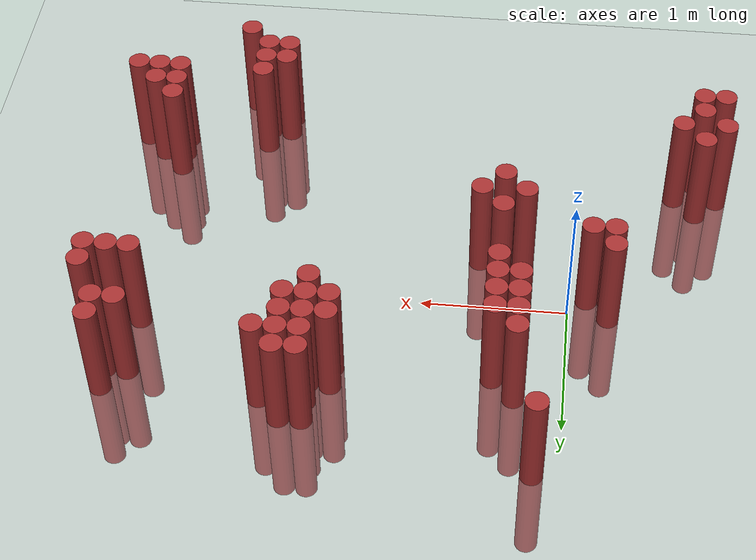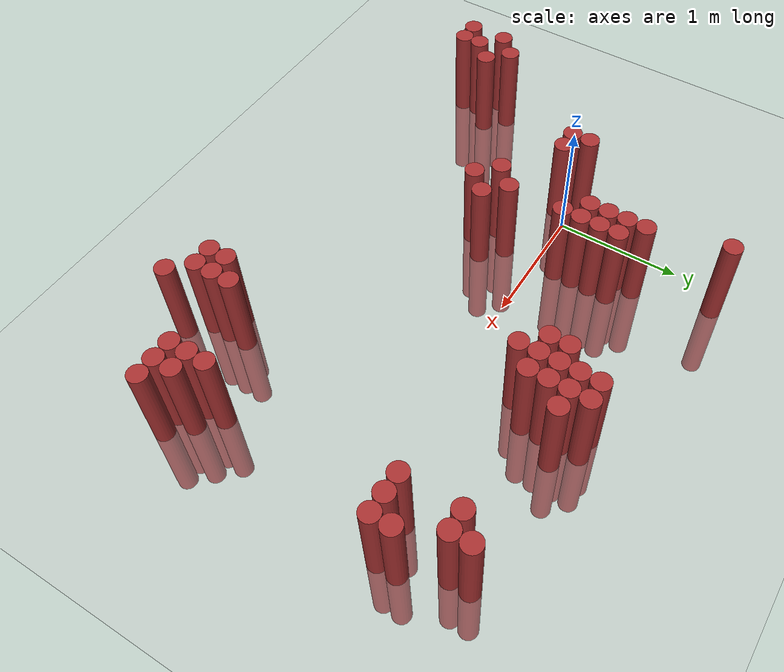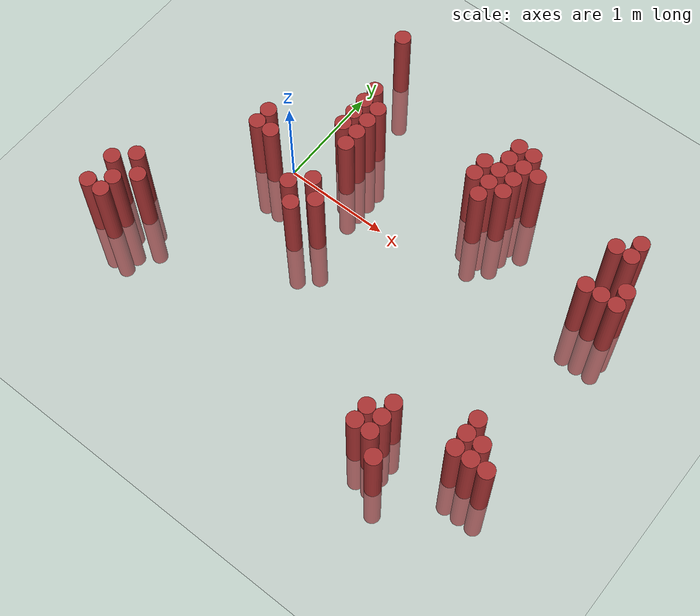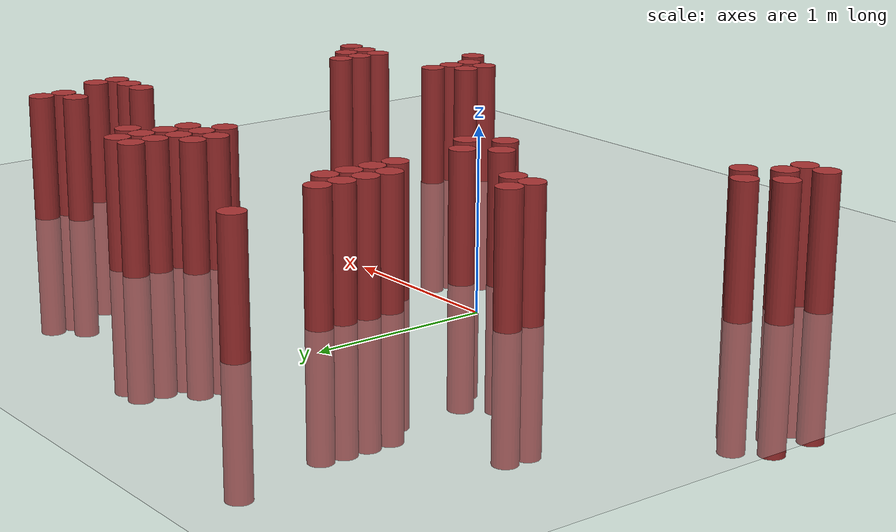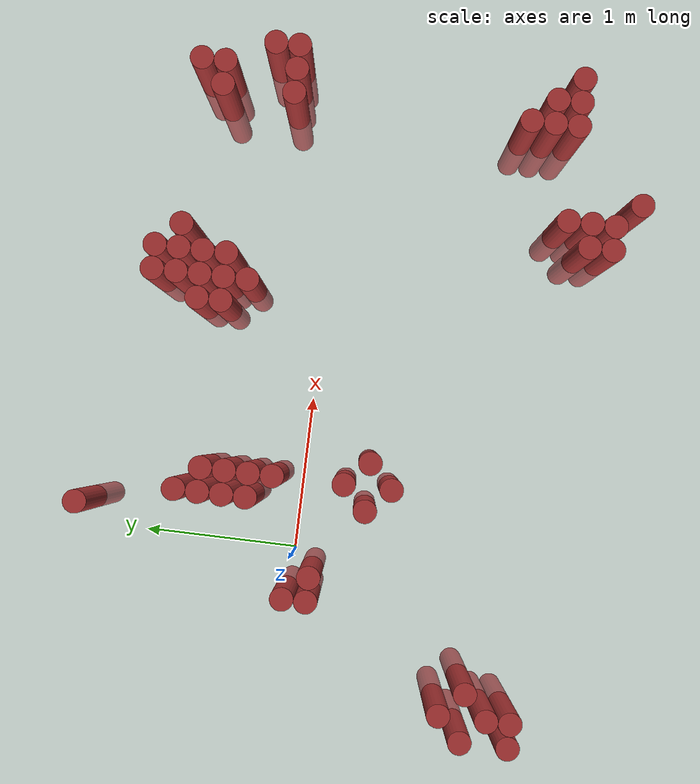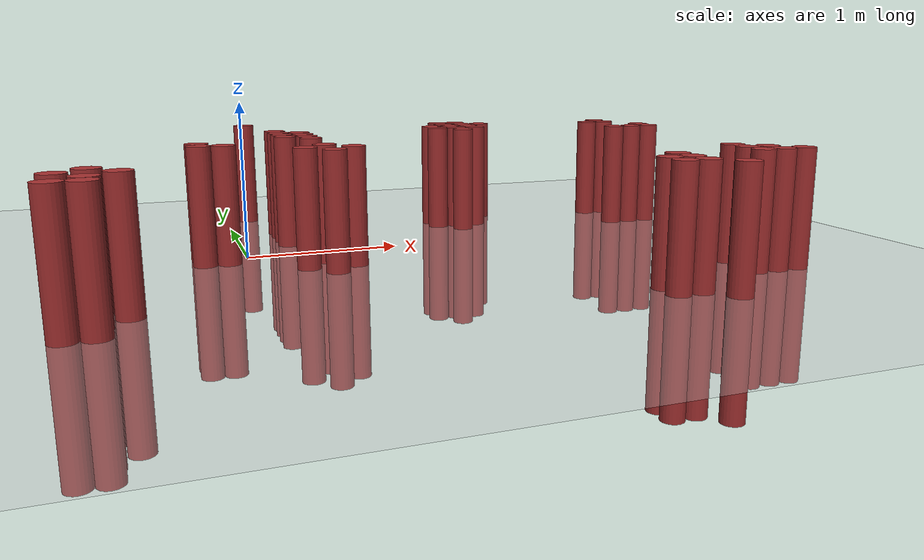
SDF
<sdf version="1.6">
 <world name="default">
  <model name="ground_plane">
   <static>1</static>
   <link name="link">
    <collision name="collision">
     <geometry><plane><normal>0 0 1</normal><size>100 100</size></plane></geometry>
     <surface><friction><ode><mu>100</mu><mu2>50</mu2></ode></friction></surface>
    </collision>
    <visual name="visual">
     <cast_shadows>0</cast_shadows>
     <geometry><plane><normal>0 0 1</normal><size>100 100</size></plane></geometry>
     <material>
      <script><uri>file://media/materials/scripts/gazebo.material</uri><name>Gazebo/Grey</name></script>
     </material>
    </visual>
   </link>
  </model>
  <model name="unit_cylinder_372">
   <static>1</static>
   <pose>-1.025000 -1.475000 0.000000 0.000000 0.000000 0.000000</pose>
   <link name="link">
    <inertial>
     <mass>1</mass>
     <inertia><ixx>0.145833</ixx><ixy>0</ixy><ixz>0</ixz><iyy>0.145833</iyy><iyz>0</iyz><izz>0.125</izz></inertia>
    </inertial>
    <collision name="collision">
     <geometry><cylinder><radius>0.075000</radius><length>1.5</length></cylinder></geometry>
    </collision>
    <visual name="visual">
     <geometry><cylinder><radius>0.075000</radius><length>1.5</length></cylinder></geometry>
     <material>
      <ambient>0.648000 0.192000 0.192000 1</ambient>
      <diffuse>0.648000 0.192000 0.192000 1</diffuse>
     </material>
     <material>
      <script><name>Gazebo/Grey</name><uri>file://media/materials/scripts/gazebo.material</uri></script>
     </material>
    </visual>
   </link>
  </model>
  <model name="unit_cylinder_373">
   <static>1</static>
   <pose>-1.025000 -1.175000 0.000000 0.000000 0.000000 0.000000</pose>
   <link name="link">
    <inertial>
     <mass>1</mass>
     <inertia><ixx>0.145833</ixx><ixy>0</ixy><ixz>0</ixz><iyy>0.145833</iyy><iyz>0</iyz><izz>0.125</izz></inertia>
    </inertial>
    <collision name="collision">
     <geometry><cylinder><radius>0.075000</radius><length>1.5</length></cylinder></geometry>
    </collision>
    <visual name="visual">
     <geometry><cylinder><radius>0.075000</radius><length>1.5</length></cylinder></geometry>
     <material>
      <ambient>0.648000 0.192000 0.192000 1</ambient>
      <diffuse>0.648000 0.192000 0.192000 1</diffuse>
     </material>
     <material>
      <script><name>Gazebo/Grey</name><uri>file://media/materials/scripts/gazebo.material</uri></script>
     </material>
    </visual>
   </link>
  </model>
  <model name="unit_cylinder_381">
   <static>1</static>
   <pose>-0.875000 -1.475000 0.000000 0.000000 0.000000 0.000000</pose>
   <link name="link">
    <inertial>
     <mass>1</mass>
     <inertia><ixx>0.145833</ixx><ixy>0</ixy><ixz>0</ixz><iyy>0.145833</iyy><iyz>0</iyz><izz>0.125</izz></inertia>
    </inertial>
    <collision name="collision">
     <geometry><cylinder><radius>0.075000</radius><length>1.5</length></cylinder></geometry>
    </collision>
    <visual name="visual">
     <geometry><cylinder><radius>0.075000</radius><length>1.5</length></cylinder></geometry>
     <material>
      <ambient>0.648000 0.192000 0.192000 1</ambient>
      <diffuse>0.648000 0.192000 0.192000 1</diffuse>
     </material>
     <material>
      <script><name>Gazebo/Grey</name><uri>file://media/materials/scripts/gazebo.material</uri></script>
     </material>
    </visual>
   </link>
  </model>
  <model name="unit_cylinder_382">
   <static>1</static>
   <pose>-0.875000 -1.325000 0.000000 0.000000 0.000000 0.000000</pose>
   <link name="link">
    <inertial>
     <mass>1</mass>
     <inertia><ixx>0.145833</ixx><ixy>0</ixy><ixz>0</ixz><iyy>0.145833</iyy><iyz>0</iyz><izz>0.125</izz></inertia>
    </inertial>
    <collision name="collision">
     <geometry><cylinder><radius>0.075000</radius><length>1.5</length></cylinder></geometry>
    </collision>
    <visual name="visual">
     <geometry><cylinder><radius>0.075000</radius><length>1.5</length></cylinder></geometry>
     <material>
      <ambient>0.648000 0.192000 0.192000 1</ambient>
      <diffuse>0.648000 0.192000 0.192000 1</diffuse>
     </material>
     <material>
      <script><name>Gazebo/Grey</name><uri>file://media/materials/scripts/gazebo.material</uri></script>
     </material>
    </visual>
   </link>
  </model>
  <model name="unit_cylinder_383">
   <static>1</static>
   <pose>-0.875000 -1.025000 0.000000 0.000000 0.000000 0.000000</pose>
   <link name="link">
    <inertial>
     <mass>1</mass>
     <inertia><ixx>0.145833</ixx><ixy>0</ixy><ixz>0</ixz><iyy>0.145833</iyy><iyz>0</iyz><izz>0.125</izz></inertia>
    </inertial>
    <collision name="collision">
     <geometry><cylinder><radius>0.075000</radius><length>1.5</length></cylinder></geometry>
    </collision>
    <visual name="visual">
     <geometry><cylinder><radius>0.075000</radius><length>1.5</length></cylinder></geometry>
     <material>
      <ambient>0.648000 0.192000 0.192000 1</ambient>
      <diffuse>0.648000 0.192000 0.192000 1</diffuse>
     </material>
     <material>
      <script><name>Gazebo/Grey</name><uri>file://media/materials/scripts/gazebo.material</uri></script>
     </material>
    </visual>
   </link>
  </model>
  <model name="unit_cylinder_388">
   <static>1</static>
   <pose>-0.725000 -1.175000 0.000000 0.000000 0.000000 0.000000</pose>
   <link name="link">
    <inertial>
     <mass>1</mass>
     <inertia><ixx>0.145833</ixx><ixy>0</ixy><ixz>0</ixz><iyy>0.145833</iyy><iyz>0</iyz><izz>0.125</izz></inertia>
    </inertial>
    <collision name="collision">
     <geometry><cylinder><radius>0.075000</radius><length>1.5</length></cylinder></geometry>
    </collision>
    <visual name="visual">
     <geometry><cylinder><radius>0.075000</radius><length>1.5</length></cylinder></geometry>
     <material>
      <ambient>0.648000 0.192000 0.192000 1</ambient>
      <diffuse>0.648000 0.192000 0.192000 1</diffuse>
     </material>
     <material>
      <script><name>Gazebo/Grey</name><uri>file://media/materials/scripts/gazebo.material</uri></script>
     </material>
    </visual>
   </link>
  </model>
  <model name="unit_cylinder_397">
   <static>1</static>
   <pose>-0.275000 -0.125000 0.000000 0.000000 0.000000 0.000000</pose>
   <link name="link">
    <inertial>
     <mass>1</mass>
     <inertia><ixx>0.145833</ixx><ixy>0</ixy><ixz>0</ixz><iyy>0.145833</iyy><iyz>0</iyz><izz>0.125</izz></inertia>
    </inertial>
    <collision name="collision">
     <geometry><cylinder><radius>0.075000</radius><length>1.5</length></cylinder></geometry>
    </collision>
    <visual name="visual">
     <geometry><cylinder><radius>0.075000</radius><length>1.5</length></cylinder></geometry>
     <material>
      <ambient>0.648000 0.192000 0.192000 1</ambient>
      <diffuse>0.648000 0.192000 0.192000 1</diffuse>
     </material>
     <material>
      <script><name>Gazebo/Grey</name><uri>file://media/materials/scripts/gazebo.material</uri></script>
     </material>
    </visual>
   </link>
  </model>
  <model name="unit_cylinder_398">
   <static>1</static>
   <pose>-0.275000 0.025000 0.000000 0.000000 0.000000 0.000000</pose>
   <link name="link">
    <inertial>
     <mass>1</mass>
     <inertia><ixx>0.145833</ixx><ixy>0</ixy><ixz>0</ixz><iyy>0.145833</iyy><iyz>0</iyz><izz>0.125</izz></inertia>
    </inertial>
    <collision name="collision">
     <geometry><cylinder><radius>0.075000</radius><length>1.5</length></cylinder></geometry>
    </collision>
    <visual name="visual">
     <geometry><cylinder><radius>0.075000</radius><length>1.5</length></cylinder></geometry>
     <material>
      <ambient>0.648000 0.192000 0.192000 1</ambient>
      <diffuse>0.648000 0.192000 0.192000 1</diffuse>
     </material>
     <material>
      <script><name>Gazebo/Grey</name><uri>file://media/materials/scripts/gazebo.material</uri></script>
     </material>
    </visual>
   </link>
  </model>
  <model name="unit_cylinder_402">
   <static>1</static>
   <pose>-0.125000 -0.125000 0.000000 0.000000 0.000000 0.000000</pose>
   <link name="link">
    <inertial>
     <mass>1</mass>
     <inertia><ixx>0.145833</ixx><ixy>0</ixy><ixz>0</ixz><iyy>0.145833</iyy><iyz>0</iyz><izz>0.125</izz></inertia>
    </inertial>
    <collision name="collision">
     <geometry><cylinder><radius>0.075000</radius><length>1.5</length></cylinder></geometry>
    </collision>
    <visual name="visual">
     <geometry><cylinder><radius>0.075000</radius><length>1.5</length></cylinder></geometry>
     <material>
      <ambient>0.648000 0.192000 0.192000 1</ambient>
      <diffuse>0.648000 0.192000 0.192000 1</diffuse>
     </material>
     <material>
      <script><name>Gazebo/Grey</name><uri>file://media/materials/scripts/gazebo.material</uri></script>
     </material>
    </visual>
   </link>
  </model>
  <model name="unit_cylinder_403">
   <static>1</static>
   <pose>0.175000 1.375000 0.000000 0.000000 0.000000 0.000000</pose>
   <link name="link">
    <inertial>
     <mass>1</mass>
     <inertia><ixx>0.145833</ixx><ixy>0</ixy><ixz>0</ixz><iyy>0.145833</iyy><iyz>0</iyz><izz>0.125</izz></inertia>
    </inertial>
    <collision name="collision">
     <geometry><cylinder><radius>0.075000</radius><length>1.5</length></cylinder></geometry>
    </collision>
    <visual name="visual">
     <geometry><cylinder><radius>0.075000</radius><length>1.5</length></cylinder></geometry>
     <material>
      <ambient>0.648000 0.192000 0.192000 1</ambient>
      <diffuse>0.648000 0.192000 0.192000 1</diffuse>
     </material>
     <material>
      <script><name>Gazebo/Grey</name><uri>file://media/materials/scripts/gazebo.material</uri></script>
     </material>
    </visual>
   </link>
  </model>
  <model name="unit_cylinder_409">
   <static>1</static>
   <pose>0.325000 -0.425000 0.000000 0.000000 0.000000 0.000000</pose>
   <link name="link">
    <inertial>
     <mass>1</mass>
     <inertia><ixx>0.145833</ixx><ixy>0</ixy><ixz>0</ixz><iyy>0.145833</iyy><iyz>0</iyz><izz>0.125</izz></inertia>
    </inertial>
    <collision name="collision">
     <geometry><cylinder><radius>0.075000</radius><length>1.5</length></cylinder></geometry>
    </collision>
    <visual name="visual">
     <geometry><cylinder><radius>0.075000</radius><length>1.5</length></cylinder></geometry>
     <material>
      <ambient>0.648000 0.192000 0.192000 1</ambient>
      <diffuse>0.648000 0.192000 0.192000 1</diffuse>
     </material>
     <material>
      <script><name>Gazebo/Grey</name><uri>file://media/materials/scripts/gazebo.material</uri></script>
     </material>
    </visual>
   </link>
  </model>
  <model name="unit_cylinder_410">
   <static>1</static>
   <pose>0.325000 0.325000 0.000000 0.000000 0.000000 0.000000</pose>
   <link name="link">
    <inertial>
     <mass>1</mass>
     <inertia><ixx>0.145833</ixx><ixy>0</ixy><ixz>0</ixz><iyy>0.145833</iyy><iyz>0</iyz><izz>0.125</izz></inertia>
    </inertial>
    <collision name="collision">
     <geometry><cylinder><radius>0.075000</radius><length>1.5</length></cylinder></geometry>
    </collision>
    <visual name="visual">
     <geometry><cylinder><radius>0.075000</radius><length>1.5</length></cylinder></geometry>
     <material>
      <ambient>0.648000 0.192000 0.192000 1</ambient>
      <diffuse>0.648000 0.192000 0.192000 1</diffuse>
     </material>
     <material>
      <script><name>Gazebo/Grey</name><uri>file://media/materials/scripts/gazebo.material</uri></script>
     </material>
    </visual>
   </link>
  </model>
  <model name="unit_cylinder_411">
   <static>1</static>
   <pose>0.325000 0.475000 0.000000 0.000000 0.000000 0.000000</pose>
   <link name="link">
    <inertial>
     <mass>1</mass>
     <inertia><ixx>0.145833</ixx><ixy>0</ixy><ixz>0</ixz><iyy>0.145833</iyy><iyz>0</iyz><izz>0.125</izz></inertia>
    </inertial>
    <collision name="collision">
     <geometry><cylinder><radius>0.075000</radius><length>1.5</length></cylinder></geometry>
    </collision>
    <visual name="visual">
     <geometry><cylinder><radius>0.075000</radius><length>1.5</length></cylinder></geometry>
     <material>
      <ambient>0.648000 0.192000 0.192000 1</ambient>
      <diffuse>0.648000 0.192000 0.192000 1</diffuse>
     </material>
     <material>
      <script><name>Gazebo/Grey</name><uri>file://media/materials/scripts/gazebo.material</uri></script>
     </material>
    </visual>
   </link>
  </model>
  <model name="unit_cylinder_412">
   <static>1</static>
   <pose>0.325000 0.625000 0.000000 0.000000 0.000000 0.000000</pose>
   <link name="link">
    <inertial>
     <mass>1</mass>
     <inertia><ixx>0.145833</ixx><ixy>0</ixy><ixz>0</ixz><iyy>0.145833</iyy><iyz>0</iyz><izz>0.125</izz></inertia>
    </inertial>
    <collision name="collision">
     <geometry><cylinder><radius>0.075000</radius><length>1.5</length></cylinder></geometry>
    </collision>
    <visual name="visual">
     <geometry><cylinder><radius>0.075000</radius><length>1.5</length></cylinder></geometry>
     <material>
      <ambient>0.648000 0.192000 0.192000 1</ambient>
      <diffuse>0.648000 0.192000 0.192000 1</diffuse>
     </material>
     <material>
      <script><name>Gazebo/Grey</name><uri>file://media/materials/scripts/gazebo.material</uri></script>
     </material>
    </visual>
   </link>
  </model>
  <model name="unit_cylinder_413">
   <static>1</static>
   <pose>0.325000 0.775000 0.000000 0.000000 0.000000 0.000000</pose>
   <link name="link">
    <inertial>
     <mass>1</mass>
     <inertia><ixx>0.145833</ixx><ixy>0</ixy><ixz>0</ixz><iyy>0.145833</iyy><iyz>0</iyz><izz>0.125</izz></inertia>
    </inertial>
    <collision name="collision">
     <geometry><cylinder><radius>0.075000</radius><length>1.5</length></cylinder></geometry>
    </collision>
    <visual name="visual">
     <geometry><cylinder><radius>0.075000</radius><length>1.5</length></cylinder></geometry>
     <material>
      <ambient>0.648000 0.192000 0.192000 1</ambient>
      <diffuse>0.648000 0.192000 0.192000 1</diffuse>
     </material>
     <material>
      <script><name>Gazebo/Grey</name><uri>file://media/materials/scripts/gazebo.material</uri></script>
     </material>
    </visual>
   </link>
  </model>
  <model name="unit_cylinder_418">
   <static>1</static>
   <pose>0.475000 -0.575000 0.000000 0.000000 0.000000 0.000000</pose>
   <link name="link">
    <inertial>
     <mass>1</mass>
     <inertia><ixx>0.145833</ixx><ixy>0</ixy><ixz>0</ixz><iyy>0.145833</iyy><iyz>0</iyz><izz>0.125</izz></inertia>
    </inertial>
    <collision name="collision">
     <geometry><cylinder><radius>0.075000</radius><length>1.5</length></cylinder></geometry>
    </collision>
    <visual name="visual">
     <geometry><cylinder><radius>0.075000</radius><length>1.5</length></cylinder></geometry>
     <material>
      <ambient>0.648000 0.192000 0.192000 1</ambient>
      <diffuse>0.648000 0.192000 0.192000 1</diffuse>
     </material>
     <material>
      <script><name>Gazebo/Grey</name><uri>file://media/materials/scripts/gazebo.material</uri></script>
     </material>
    </visual>
   </link>
  </model>
  <model name="unit_cylinder_419">
   <static>1</static>
   <pose>0.475000 -0.275000 0.000000 0.000000 0.000000 0.000000</pose>
   <link name="link">
    <inertial>
     <mass>1</mass>
     <inertia><ixx>0.145833</ixx><ixy>0</ixy><ixz>0</ixz><iyy>0.145833</iyy><iyz>0</iyz><izz>0.125</izz></inertia>
    </inertial>
    <collision name="collision">
     <geometry><cylinder><radius>0.075000</radius><length>1.5</length></cylinder></geometry>
    </collision>
    <visual name="visual">
     <geometry><cylinder><radius>0.075000</radius><length>1.5</length></cylinder></geometry>
     <material>
      <ambient>0.648000 0.192000 0.192000 1</ambient>
      <diffuse>0.648000 0.192000 0.192000 1</diffuse>
     </material>
     <material>
      <script><name>Gazebo/Grey</name><uri>file://media/materials/scripts/gazebo.material</uri></script>
     </material>
    </visual>
   </link>
  </model>
  <model name="unit_cylinder_420">
   <static>1</static>
   <pose>0.475000 0.175000 0.000000 0.000000 0.000000 0.000000</pose>
   <link name="link">
    <inertial>
     <mass>1</mass>
     <inertia><ixx>0.145833</ixx><ixy>0</ixy><ixz>0</ixz><iyy>0.145833</iyy><iyz>0</iyz><izz>0.125</izz></inertia>
    </inertial>
    <collision name="collision">
     <geometry><cylinder><radius>0.075000</radius><length>1.5</length></cylinder></geometry>
    </collision>
    <visual name="visual">
     <geometry><cylinder><radius>0.075000</radius><length>1.5</length></cylinder></geometry>
     <material>
      <ambient>0.648000 0.192000 0.192000 1</ambient>
      <diffuse>0.648000 0.192000 0.192000 1</diffuse>
     </material>
     <material>
      <script><name>Gazebo/Grey</name><uri>file://media/materials/scripts/gazebo.material</uri></script>
     </material>
    </visual>
   </link>
  </model>
  <model name="unit_cylinder_421">
   <static>1</static>
   <pose>0.475000 0.325000 0.000000 0.000000 0.000000 0.000000</pose>
   <link name="link">
    <inertial>
     <mass>1</mass>
     <inertia><ixx>0.145833</ixx><ixy>0</ixy><ixz>0</ixz><iyy>0.145833</iyy><iyz>0</iyz><izz>0.125</izz></inertia>
    </inertial>
    <collision name="collision">
     <geometry><cylinder><radius>0.075000</radius><length>1.5</length></cylinder></geometry>
    </collision>
    <visual name="visual">
     <geometry><cylinder><radius>0.075000</radius><length>1.5</length></cylinder></geometry>
     <material>
      <ambient>0.648000 0.192000 0.192000 1</ambient>
      <diffuse>0.648000 0.192000 0.192000 1</diffuse>
     </material>
     <material>
      <script><name>Gazebo/Grey</name><uri>file://media/materials/scripts/gazebo.material</uri></script>
     </material>
    </visual>
   </link>
  </model>
  <model name="unit_cylinder_422">
   <static>1</static>
   <pose>0.475000 0.475000 0.000000 0.000000 0.000000 0.000000</pose>
   <link name="link">
    <inertial>
     <mass>1</mass>
     <inertia><ixx>0.145833</ixx><ixy>0</ixy><ixz>0</ixz><iyy>0.145833</iyy><iyz>0</iyz><izz>0.125</izz></inertia>
    </inertial>
    <collision name="collision">
     <geometry><cylinder><radius>0.075000</radius><length>1.5</length></cylinder></geometry>
    </collision>
    <visual name="visual">
     <geometry><cylinder><radius>0.075000</radius><length>1.5</length></cylinder></geometry>
     <material>
      <ambient>0.648000 0.192000 0.192000 1</ambient>
      <diffuse>0.648000 0.192000 0.192000 1</diffuse>
     </material>
     <material>
      <script><name>Gazebo/Grey</name><uri>file://media/materials/scripts/gazebo.material</uri></script>
     </material>
    </visual>
   </link>
  </model>
  <model name="unit_cylinder_423">
   <static>1</static>
   <pose>0.475000 0.625000 0.000000 0.000000 0.000000 0.000000</pose>
   <link name="link">
    <inertial>
     <mass>1</mass>
     <inertia><ixx>0.145833</ixx><ixy>0</ixy><ixz>0</ixz><iyy>0.145833</iyy><iyz>0</iyz><izz>0.125</izz></inertia>
    </inertial>
    <collision name="collision">
     <geometry><cylinder><radius>0.075000</radius><length>1.5</length></cylinder></geometry>
    </collision>
    <visual name="visual">
     <geometry><cylinder><radius>0.075000</radius><length>1.5</length></cylinder></geometry>
     <material>
      <ambient>0.648000 0.192000 0.192000 1</ambient>
      <diffuse>0.648000 0.192000 0.192000 1</diffuse>
     </material>
     <material>
      <script><name>Gazebo/Grey</name><uri>file://media/materials/scripts/gazebo.material</uri></script>
     </material>
    </visual>
   </link>
  </model>
  <model name="unit_cylinder_426">
   <static>1</static>
   <pose>0.625000 -0.425000 0.000000 0.000000 0.000000 0.000000</pose>
   <link name="link">
    <inertial>
     <mass>1</mass>
     <inertia><ixx>0.145833</ixx><ixy>0</ixy><ixz>0</ixz><iyy>0.145833</iyy><iyz>0</iyz><izz>0.125</izz></inertia>
    </inertial>
    <collision name="collision">
     <geometry><cylinder><radius>0.075000</radius><length>1.5</length></cylinder></geometry>
    </collision>
    <visual name="visual">
     <geometry><cylinder><radius>0.075000</radius><length>1.5</length></cylinder></geometry>
     <material>
      <ambient>0.648000 0.192000 0.192000 1</ambient>
      <diffuse>0.648000 0.192000 0.192000 1</diffuse>
     </material>
     <material>
      <script><name>Gazebo/Grey</name><uri>file://media/materials/scripts/gazebo.material</uri></script>
     </material>
    </visual>
   </link>
  </model>
  <model name="unit_cylinder_428">
   <static>1</static>
   <pose>1.525000 0.625000 0.000000 0.000000 0.000000 0.000000</pose>
   <link name="link">
    <inertial>
     <mass>1</mass>
     <inertia><ixx>0.145833</ixx><ixy>0</ixy><ixz>0</ixz><iyy>0.145833</iyy><iyz>0</iyz><izz>0.125</izz></inertia>
    </inertial>
    <collision name="collision">
     <geometry><cylinder><radius>0.075000</radius><length>1.5</length></cylinder></geometry>
    </collision>
    <visual name="visual">
     <geometry><cylinder><radius>0.075000</radius><length>1.5</length></cylinder></geometry>
     <material>
      <ambient>0.648000 0.192000 0.192000 1</ambient>
      <diffuse>0.648000 0.192000 0.192000 1</diffuse>
     </material>
     <material>
      <script><name>Gazebo/Grey</name><uri>file://media/materials/scripts/gazebo.material</uri></script>
     </material>
    </visual>
   </link>
  </model>
  <model name="unit_cylinder_429">
   <static>1</static>
   <pose>1.525000 0.775000 0.000000 0.000000 0.000000 0.000000</pose>
   <link name="link">
    <inertial>
     <mass>1</mass>
     <inertia><ixx>0.145833</ixx><ixy>0</ixy><ixz>0</ixz><iyy>0.145833</iyy><iyz>0</iyz><izz>0.125</izz></inertia>
    </inertial>
    <collision name="collision">
     <geometry><cylinder><radius>0.075000</radius><length>1.5</length></cylinder></geometry>
    </collision>
    <visual name="visual">
     <geometry><cylinder><radius>0.075000</radius><length>1.5</length></cylinder></geometry>
     <material>
      <ambient>0.648000 0.192000 0.192000 1</ambient>
      <diffuse>0.648000 0.192000 0.192000 1</diffuse>
     </material>
     <material>
      <script><name>Gazebo/Grey</name><uri>file://media/materials/scripts/gazebo.material</uri></script>
     </material>
    </visual>
   </link>
  </model>
  <model name="unit_cylinder_430">
   <static>1</static>
   <pose>1.675000 0.475000 0.000000 0.000000 0.000000 0.000000</pose>
   <link name="link">
    <inertial>
     <mass>1</mass>
     <inertia><ixx>0.145833</ixx><ixy>0</ixy><ixz>0</ixz><iyy>0.145833</iyy><iyz>0</iyz><izz>0.125</izz></inertia>
    </inertial>
    <collision name="collision">
     <geometry><cylinder><radius>0.075000</radius><length>1.5</length></cylinder></geometry>
    </collision>
    <visual name="visual">
     <geometry><cylinder><radius>0.075000</radius><length>1.5</length></cylinder></geometry>
     <material>
      <ambient>0.648000 0.192000 0.192000 1</ambient>
      <diffuse>0.648000 0.192000 0.192000 1</diffuse>
     </material>
     <material>
      <script><name>Gazebo/Grey</name><uri>file://media/materials/scripts/gazebo.material</uri></script>
     </material>
    </visual>
   </link>
  </model>
  <model name="unit_cylinder_431">
   <static>1</static>
   <pose>1.675000 0.625000 0.000000 0.000000 0.000000 0.000000</pose>
   <link name="link">
    <inertial>
     <mass>1</mass>
     <inertia><ixx>0.145833</ixx><ixy>0</ixy><ixz>0</ixz><iyy>0.145833</iyy><iyz>0</iyz><izz>0.125</izz></inertia>
    </inertial>
    <collision name="collision">
     <geometry><cylinder><radius>0.075000</radius><length>1.5</length></cylinder></geometry>
    </collision>
    <visual name="visual">
     <geometry><cylinder><radius>0.075000</radius><length>1.5</length></cylinder></geometry>
     <material>
      <ambient>0.648000 0.192000 0.192000 1</ambient>
      <diffuse>0.648000 0.192000 0.192000 1</diffuse>
     </material>
     <material>
      <script><name>Gazebo/Grey</name><uri>file://media/materials/scripts/gazebo.material</uri></script>
     </material>
    </visual>
   </link>
  </model>
  <model name="unit_cylinder_432">
   <static>1</static>
   <pose>1.675000 0.775000 0.000000 0.000000 0.000000 0.000000</pose>
   <link name="link">
    <inertial>
     <mass>1</mass>
     <inertia><ixx>0.145833</ixx><ixy>0</ixy><ixz>0</ixz><iyy>0.145833</iyy><iyz>0</iyz><izz>0.125</izz></inertia>
    </inertial>
    <collision name="collision">
     <geometry><cylinder><radius>0.075000</radius><length>1.5</length></cylinder></geometry>
    </collision>
    <visual name="visual">
     <geometry><cylinder><radius>0.075000</radius><length>1.5</length></cylinder></geometry>
     <material>
      <ambient>0.648000 0.192000 0.192000 1</ambient>
      <diffuse>0.648000 0.192000 0.192000 1</diffuse>
     </material>
     <material>
      <script><name>Gazebo/Grey</name><uri>file://media/materials/scripts/gazebo.material</uri></script>
     </material>
    </visual>
   </link>
  </model>
  <model name="unit_cylinder_433">
   <static>1</static>
   <pose>1.675000 0.925000 0.000000 0.000000 0.000000 0.000000</pose>
   <link name="link">
    <inertial>
     <mass>1</mass>
     <inertia><ixx>0.145833</ixx><ixy>0</ixy><ixz>0</ixz><iyy>0.145833</iyy><iyz>0</iyz><izz>0.125</izz></inertia>
    </inertial>
    <collision name="collision">
     <geometry><cylinder><radius>0.075000</radius><length>1.5</length></cylinder></geometry>
    </collision>
    <visual name="visual">
     <geometry><cylinder><radius>0.075000</radius><length>1.5</length></cylinder></geometry>
     <material>
      <ambient>0.648000 0.192000 0.192000 1</ambient>
      <diffuse>0.648000 0.192000 0.192000 1</diffuse>
     </material>
     <material>
      <script><name>Gazebo/Grey</name><uri>file://media/materials/scripts/gazebo.material</uri></script>
     </material>
    </visual>
   </link>
  </model>
  <model name="unit_cylinder_434">
   <static>1</static>
   <pose>1.675000 1.075000 0.000000 0.000000 0.000000 0.000000</pose>
   <link name="link">
    <inertial>
     <mass>1</mass>
     <inertia><ixx>0.145833</ixx><ixy>0</ixy><ixz>0</ixz><iyy>0.145833</iyy><iyz>0</iyz><izz>0.125</izz></inertia>
    </inertial>
    <collision name="collision">
     <geometry><cylinder><radius>0.075000</radius><length>1.5</length></cylinder></geometry>
    </collision>
    <visual name="visual">
     <geometry><cylinder><radius>0.075000</radius><length>1.5</length></cylinder></geometry>
     <material>
      <ambient>0.648000 0.192000 0.192000 1</ambient>
      <diffuse>0.648000 0.192000 0.192000 1</diffuse>
     </material>
     <material>
      <script><name>Gazebo/Grey</name><uri>file://media/materials/scripts/gazebo.material</uri></script>
     </material>
    </visual>
   </link>
  </model>
  <model name="unit_cylinder_435">
   <static>1</static>
   <pose>1.825000 0.625000 0.000000 0.000000 0.000000 0.000000</pose>
   <link name="link">
    <inertial>
     <mass>1</mass>
     <inertia><ixx>0.145833</ixx><ixy>0</ixy><ixz>0</ixz><iyy>0.145833</iyy><iyz>0</iyz><izz>0.125</izz></inertia>
    </inertial>
    <collision name="collision">
     <geometry><cylinder><radius>0.075000</radius><length>1.5</length></cylinder></geometry>
    </collision>
    <visual name="visual">
     <geometry><cylinder><radius>0.075000</radius><length>1.5</length></cylinder></geometry>
     <material>
      <ambient>0.648000 0.192000 0.192000 1</ambient>
      <diffuse>0.648000 0.192000 0.192000 1</diffuse>
     </material>
     <material>
      <script><name>Gazebo/Grey</name><uri>file://media/materials/scripts/gazebo.material</uri></script>
     </material>
    </visual>
   </link>
  </model>
  <model name="unit_cylinder_436">
   <static>1</static>
   <pose>1.825000 0.775000 0.000000 0.000000 0.000000 0.000000</pose>
   <link name="link">
    <inertial>
     <mass>1</mass>
     <inertia><ixx>0.145833</ixx><ixy>0</ixy><ixz>0</ixz><iyy>0.145833</iyy><iyz>0</iyz><izz>0.125</izz></inertia>
    </inertial>
    <collision name="collision">
     <geometry><cylinder><radius>0.075000</radius><length>1.5</length></cylinder></geometry>
    </collision>
    <visual name="visual">
     <geometry><cylinder><radius>0.075000</radius><length>1.5</length></cylinder></geometry>
     <material>
      <ambient>0.648000 0.192000 0.192000 1</ambient>
      <diffuse>0.648000 0.192000 0.192000 1</diffuse>
     </material>
     <material>
      <script><name>Gazebo/Grey</name><uri>file://media/materials/scripts/gazebo.material</uri></script>
     </material>
    </visual>
   </link>
  </model>
  <model name="unit_cylinder_437">
   <static>1</static>
   <pose>1.825000 0.925000 0.000000 0.000000 0.000000 0.000000</pose>
   <link name="link">
    <inertial>
     <mass>1</mass>
     <inertia><ixx>0.145833</ixx><ixy>0</ixy><ixz>0</ixz><iyy>0.145833</iyy><iyz>0</iyz><izz>0.125</izz></inertia>
    </inertial>
    <collision name="collision">
     <geometry><cylinder><radius>0.075000</radius><length>1.5</length></cylinder></geometry>
    </collision>
    <visual name="visual">
     <geometry><cylinder><radius>0.075000</radius><length>1.5</length></cylinder></geometry>
     <material>
      <ambient>0.648000 0.192000 0.192000 1</ambient>
      <diffuse>0.648000 0.192000 0.192000 1</diffuse>
     </material>
     <material>
      <script><name>Gazebo/Grey</name><uri>file://media/materials/scripts/gazebo.material</uri></script>
     </material>
    </visual>
   </link>
  </model>
  <model name="unit_cylinder_438">
   <static>1</static>
   <pose>1.825000 1.075000 0.000000 0.000000 0.000000 0.000000</pose>
   <link name="link">
    <inertial>
     <mass>1</mass>
     <inertia><ixx>0.145833</ixx><ixy>0</ixy><ixz>0</ixz><iyy>0.145833</iyy><iyz>0</iyz><izz>0.125</izz></inertia>
    </inertial>
    <collision name="collision">
     <geometry><cylinder><radius>0.075000</radius><length>1.5</length></cylinder></geometry>
    </collision>
    <visual name="visual">
     <geometry><cylinder><radius>0.075000</radius><length>1.5</length></cylinder></geometry>
     <material>
      <ambient>0.648000 0.192000 0.192000 1</ambient>
      <diffuse>0.648000 0.192000 0.192000 1</diffuse>
     </material>
     <material>
      <script><name>Gazebo/Grey</name><uri>file://media/materials/scripts/gazebo.material</uri></script>
     </material>
    </visual>
   </link>
  </model>
  <model name="unit_cylinder_444">
   <static>1</static>
   <pose>1.975000 0.925000 0.000000 0.000000 0.000000 0.000000</pose>
   <link name="link">
    <inertial>
     <mass>1</mass>
     <inertia><ixx>0.145833</ixx><ixy>0</ixy><ixz>0</ixz><iyy>0.145833</iyy><iyz>0</iyz><izz>0.125</izz></inertia>
    </inertial>
    <collision name="collision">
     <geometry><cylinder><radius>0.075000</radius><length>1.5</length></cylinder></geometry>
    </collision>
    <visual name="visual">
     <geometry><cylinder><radius>0.075000</radius><length>1.5</length></cylinder></geometry>
     <material>
      <ambient>0.648000 0.192000 0.192000 1</ambient>
      <diffuse>0.648000 0.192000 0.192000 1</diffuse>
     </material>
     <material>
      <script><name>Gazebo/Grey</name><uri>file://media/materials/scripts/gazebo.material</uri></script>
     </material>
    </visual>
   </link>
  </model>
  <model name="unit_cylinder_449">
   <static>1</static>
   <pose>2.125000 -1.775000 0.000000 0.000000 0.000000 0.000000</pose>
   <link name="link">
    <inertial>
     <mass>1</mass>
     <inertia><ixx>0.145833</ixx><ixy>0</ixy><ixz>0</ixz><iyy>0.145833</iyy><iyz>0</iyz><izz>0.125</izz></inertia>
    </inertial>
    <collision name="collision">
     <geometry><cylinder><radius>0.075000</radius><length>1.5</length></cylinder></geometry>
    </collision>
    <visual name="visual">
     <geometry><cylinder><radius>0.075000</radius><length>1.5</length></cylinder></geometry>
     <material>
      <ambient>0.648000 0.192000 0.192000 1</ambient>
      <diffuse>0.648000 0.192000 0.192000 1</diffuse>
     </material>
     <material>
      <script><name>Gazebo/Grey</name><uri>file://media/materials/scripts/gazebo.material</uri></script>
     </material>
    </visual>
   </link>
  </model>
  <model name="unit_cylinder_450">
   <static>1</static>
   <pose>2.125000 -1.625000 0.000000 0.000000 0.000000 0.000000</pose>
   <link name="link">
    <inertial>
     <mass>1</mass>
     <inertia><ixx>0.145833</ixx><ixy>0</ixy><ixz>0</ixz><iyy>0.145833</iyy><iyz>0</iyz><izz>0.125</izz></inertia>
    </inertial>
    <collision name="collision">
     <geometry><cylinder><radius>0.075000</radius><length>1.5</length></cylinder></geometry>
    </collision>
    <visual name="visual">
     <geometry><cylinder><radius>0.075000</radius><length>1.5</length></cylinder></geometry>
     <material>
      <ambient>0.648000 0.192000 0.192000 1</ambient>
      <diffuse>0.648000 0.192000 0.192000 1</diffuse>
     </material>
     <material>
      <script><name>Gazebo/Grey</name><uri>file://media/materials/scripts/gazebo.material</uri></script>
     </material>
    </visual>
   </link>
  </model>
  <model name="unit_cylinder_457">
   <static>1</static>
   <pose>2.275000 -1.775000 0.000000 0.000000 0.000000 0.000000</pose>
   <link name="link">
    <inertial>
     <mass>1</mass>
     <inertia><ixx>0.145833</ixx><ixy>0</ixy><ixz>0</ixz><iyy>0.145833</iyy><iyz>0</iyz><izz>0.125</izz></inertia>
    </inertial>
    <collision name="collision">
     <geometry><cylinder><radius>0.075000</radius><length>1.5</length></cylinder></geometry>
    </collision>
    <visual name="visual">
     <geometry><cylinder><radius>0.075000</radius><length>1.5</length></cylinder></geometry>
     <material>
      <ambient>0.648000 0.192000 0.192000 1</ambient>
      <diffuse>0.648000 0.192000 0.192000 1</diffuse>
     </material>
     <material>
      <script><name>Gazebo/Grey</name><uri>file://media/materials/scripts/gazebo.material</uri></script>
     </material>
    </visual>
   </link>
  </model>
  <model name="unit_cylinder_458">
   <static>1</static>
   <pose>2.275000 -1.625000 0.000000 0.000000 0.000000 0.000000</pose>
   <link name="link">
    <inertial>
     <mass>1</mass>
     <inertia><ixx>0.145833</ixx><ixy>0</ixy><ixz>0</ixz><iyy>0.145833</iyy><iyz>0</iyz><izz>0.125</izz></inertia>
    </inertial>
    <collision name="collision">
     <geometry><cylinder><radius>0.075000</radius><length>1.5</length></cylinder></geometry>
    </collision>
    <visual name="visual">
     <geometry><cylinder><radius>0.075000</radius><length>1.5</length></cylinder></geometry>
     <material>
      <ambient>0.648000 0.192000 0.192000 1</ambient>
      <diffuse>0.648000 0.192000 0.192000 1</diffuse>
     </material>
     <material>
      <script><name>Gazebo/Grey</name><uri>file://media/materials/scripts/gazebo.material</uri></script>
     </material>
    </visual>
   </link>
  </model>
  <model name="unit_cylinder_459">
   <static>1</static>
   <pose>2.275000 -1.475000 0.000000 0.000000 0.000000 0.000000</pose>
   <link name="link">
    <inertial>
     <mass>1</mass>
     <inertia><ixx>0.145833</ixx><ixy>0</ixy><ixz>0</ixz><iyy>0.145833</iyy><iyz>0</iyz><izz>0.125</izz></inertia>
    </inertial>
    <collision name="collision">
     <geometry><cylinder><radius>0.075000</radius><length>1.5</length></cylinder></geometry>
    </collision>
    <visual name="visual">
     <geometry><cylinder><radius>0.075000</radius><length>1.5</length></cylinder></geometry>
     <material>
      <ambient>0.648000 0.192000 0.192000 1</ambient>
      <diffuse>0.648000 0.192000 0.192000 1</diffuse>
     </material>
     <material>
      <script><name>Gazebo/Grey</name><uri>file://media/materials/scripts/gazebo.material</uri></script>
     </material>
    </visual>
   </link>
  </model>
  <model name="unit_cylinder_466">
   <static>1</static>
   <pose>2.425000 -1.925000 0.000000 0.000000 0.000000 0.000000</pose>
   <link name="link">
    <inertial>
     <mass>1</mass>
     <inertia><ixx>0.145833</ixx><ixy>0</ixy><ixz>0</ixz><iyy>0.145833</iyy><iyz>0</iyz><izz>0.125</izz></inertia>
    </inertial>
    <collision name="collision">
     <geometry><cylinder><radius>0.075000</radius><length>1.5</length></cylinder></geometry>
    </collision>
    <visual name="visual">
     <geometry><cylinder><radius>0.075000</radius><length>1.5</length></cylinder></geometry>
     <material>
      <ambient>0.648000 0.192000 0.192000 1</ambient>
      <diffuse>0.648000 0.192000 0.192000 1</diffuse>
     </material>
     <material>
      <script><name>Gazebo/Grey</name><uri>file://media/materials/scripts/gazebo.material</uri></script>
     </material>
    </visual>
   </link>
  </model>
  <model name="unit_cylinder_478">
   <static>1</static>
   <pose>2.875000 -1.475000 0.000000 0.000000 0.000000 0.000000</pose>
   <link name="link">
    <inertial>
     <mass>1</mass>
     <inertia><ixx>0.145833</ixx><ixy>0</ixy><ixz>0</ixz><iyy>0.145833</iyy><iyz>0</iyz><izz>0.125</izz></inertia>
    </inertial>
    <collision name="collision">
     <geometry><cylinder><radius>0.075000</radius><length>1.5</length></cylinder></geometry>
    </collision>
    <visual name="visual">
     <geometry><cylinder><radius>0.075000</radius><length>1.5</length></cylinder></geometry>
     <material>
      <ambient>0.648000 0.192000 0.192000 1</ambient>
      <diffuse>0.648000 0.192000 0.192000 1</diffuse>
     </material>
     <material>
      <script><name>Gazebo/Grey</name><uri>file://media/materials/scripts/gazebo.material</uri></script>
     </material>
    </visual>
   </link>
  </model>
  <model name="unit_cylinder_479">
   <static>1</static>
   <pose>2.875000 -1.325000 0.000000 0.000000 0.000000 0.000000</pose>
   <link name="link">
    <inertial>
     <mass>1</mass>
     <inertia><ixx>0.145833</ixx><ixy>0</ixy><ixz>0</ixz><iyy>0.145833</iyy><iyz>0</iyz><izz>0.125</izz></inertia>
    </inertial>
    <collision name="collision">
     <geometry><cylinder><radius>0.075000</radius><length>1.5</length></cylinder></geometry>
    </collision>
    <visual name="visual">
     <geometry><cylinder><radius>0.075000</radius><length>1.5</length></cylinder></geometry>
     <material>
      <ambient>0.648000 0.192000 0.192000 1</ambient>
      <diffuse>0.648000 0.192000 0.192000 1</diffuse>
     </material>
     <material>
      <script><name>Gazebo/Grey</name><uri>file://media/materials/scripts/gazebo.material</uri></script>
     </material>
    </visual>
   </link>
  </model>
  <model name="unit_cylinder_480">
   <static>1</static>
   <pose>2.875000 -1.175000 0.000000 0.000000 0.000000 0.000000</pose>
   <link name="link">
    <inertial>
     <mass>1</mass>
     <inertia><ixx>0.145833</ixx><ixy>0</ixy><ixz>0</ixz><iyy>0.145833</iyy><iyz>0</iyz><izz>0.125</izz></inertia>
    </inertial>
    <collision name="collision">
     <geometry><cylinder><radius>0.075000</radius><length>1.5</length></cylinder></geometry>
    </collision>
    <visual name="visual">
     <geometry><cylinder><radius>0.075000</radius><length>1.5</length></cylinder></geometry>
     <material>
      <ambient>0.648000 0.192000 0.192000 1</ambient>
      <diffuse>0.648000 0.192000 0.192000 1</diffuse>
     </material>
     <material>
      <script><name>Gazebo/Grey</name><uri>file://media/materials/scripts/gazebo.material</uri></script>
     </material>
    </visual>
   </link>
  </model>
  <model name="unit_cylinder_481">
   <static>1</static>
   <pose>2.875000 0.325000 0.000000 0.000000 0.000000 0.000000</pose>
   <link name="link">
    <inertial>
     <mass>1</mass>
     <inertia><ixx>0.145833</ixx><ixy>0</ixy><ixz>0</ixz><iyy>0.145833</iyy><iyz>0</iyz><izz>0.125</izz></inertia>
    </inertial>
    <collision name="collision">
     <geometry><cylinder><radius>0.075000</radius><length>1.5</length></cylinder></geometry>
    </collision>
    <visual name="visual">
     <geometry><cylinder><radius>0.075000</radius><length>1.5</length></cylinder></geometry>
     <material>
      <ambient>0.648000 0.192000 0.192000 1</ambient>
      <diffuse>0.648000 0.192000 0.192000 1</diffuse>
     </material>
     <material>
      <script><name>Gazebo/Grey</name><uri>file://media/materials/scripts/gazebo.material</uri></script>
     </material>
    </visual>
   </link>
  </model>
  <model name="unit_cylinder_482">
   <static>1</static>
   <pose>2.875000 0.775000 0.000000 0.000000 0.000000 0.000000</pose>
   <link name="link">
    <inertial>
     <mass>1</mass>
     <inertia><ixx>0.145833</ixx><ixy>0</ixy><ixz>0</ixz><iyy>0.145833</iyy><iyz>0</iyz><izz>0.125</izz></inertia>
    </inertial>
    <collision name="collision">
     <geometry><cylinder><radius>0.075000</radius><length>1.5</length></cylinder></geometry>
    </collision>
    <visual name="visual">
     <geometry><cylinder><radius>0.075000</radius><length>1.5</length></cylinder></geometry>
     <material>
      <ambient>0.648000 0.192000 0.192000 1</ambient>
      <diffuse>0.648000 0.192000 0.192000 1</diffuse>
     </material>
     <material>
      <script><name>Gazebo/Grey</name><uri>file://media/materials/scripts/gazebo.material</uri></script>
     </material>
    </visual>
   </link>
  </model>
  <model name="unit_cylinder_486">
   <static>1</static>
   <pose>3.025000 -1.475000 0.000000 0.000000 0.000000 0.000000</pose>
   <link name="link">
    <inertial>
     <mass>1</mass>
     <inertia><ixx>0.145833</ixx><ixy>0</ixy><ixz>0</ixz><iyy>0.145833</iyy><iyz>0</iyz><izz>0.125</izz></inertia>
    </inertial>
    <collision name="collision">
     <geometry><cylinder><radius>0.075000</radius><length>1.5</length></cylinder></geometry>
    </collision>
    <visual name="visual">
     <geometry><cylinder><radius>0.075000</radius><length>1.5</length></cylinder></geometry>
     <material>
      <ambient>0.648000 0.192000 0.192000 1</ambient>
      <diffuse>0.648000 0.192000 0.192000 1</diffuse>
     </material>
     <material>
      <script><name>Gazebo/Grey</name><uri>file://media/materials/scripts/gazebo.material</uri></script>
     </material>
    </visual>
   </link>
  </model>
  <model name="unit_cylinder_487">
   <static>1</static>
   <pose>3.025000 -1.325000 0.000000 0.000000 0.000000 0.000000</pose>
   <link name="link">
    <inertial>
     <mass>1</mass>
     <inertia><ixx>0.145833</ixx><ixy>0</ixy><ixz>0</ixz><iyy>0.145833</iyy><iyz>0</iyz><izz>0.125</izz></inertia>
    </inertial>
    <collision name="collision">
     <geometry><cylinder><radius>0.075000</radius><length>1.5</length></cylinder></geometry>
    </collision>
    <visual name="visual">
     <geometry><cylinder><radius>0.075000</radius><length>1.5</length></cylinder></geometry>
     <material>
      <ambient>0.648000 0.192000 0.192000 1</ambient>
      <diffuse>0.648000 0.192000 0.192000 1</diffuse>
     </material>
     <material>
      <script><name>Gazebo/Grey</name><uri>file://media/materials/scripts/gazebo.material</uri></script>
     </material>
    </visual>
   </link>
  </model>
  <model name="unit_cylinder_488">
   <static>1</static>
   <pose>3.025000 0.325000 0.000000 0.000000 0.000000 0.000000</pose>
   <link name="link">
    <inertial>
     <mass>1</mass>
     <inertia><ixx>0.145833</ixx><ixy>0</ixy><ixz>0</ixz><iyy>0.145833</iyy><iyz>0</iyz><izz>0.125</izz></inertia>
    </inertial>
    <collision name="collision">
     <geometry><cylinder><radius>0.075000</radius><length>1.5</length></cylinder></geometry>
    </collision>
    <visual name="visual">
     <geometry><cylinder><radius>0.075000</radius><length>1.5</length></cylinder></geometry>
     <material>
      <ambient>0.648000 0.192000 0.192000 1</ambient>
      <diffuse>0.648000 0.192000 0.192000 1</diffuse>
     </material>
     <material>
      <script><name>Gazebo/Grey</name><uri>file://media/materials/scripts/gazebo.material</uri></script>
     </material>
    </visual>
   </link>
  </model>
  <model name="unit_cylinder_489">
   <static>1</static>
   <pose>3.025000 0.775000 0.000000 0.000000 0.000000 0.000000</pose>
   <link name="link">
    <inertial>
     <mass>1</mass>
     <inertia><ixx>0.145833</ixx><ixy>0</ixy><ixz>0</ixz><iyy>0.145833</iyy><iyz>0</iyz><izz>0.125</izz></inertia>
    </inertial>
    <collision name="collision">
     <geometry><cylinder><radius>0.075000</radius><length>1.5</length></cylinder></geometry>
    </collision>
    <visual name="visual">
     <geometry><cylinder><radius>0.075000</radius><length>1.5</length></cylinder></geometry>
     <material>
      <ambient>0.648000 0.192000 0.192000 1</ambient>
      <diffuse>0.648000 0.192000 0.192000 1</diffuse>
     </material>
     <material>
      <script><name>Gazebo/Grey</name><uri>file://media/materials/scripts/gazebo.material</uri></script>
     </material>
    </visual>
   </link>
  </model>
  <model name="unit_cylinder_490">
   <static>1</static>
   <pose>3.025000 0.925000 0.000000 0.000000 0.000000 0.000000</pose>
   <link name="link">
    <inertial>
     <mass>1</mass>
     <inertia><ixx>0.145833</ixx><ixy>0</ixy><ixz>0</ixz><iyy>0.145833</iyy><iyz>0</iyz><izz>0.125</izz></inertia>
    </inertial>
    <collision name="collision">
     <geometry><cylinder><radius>0.075000</radius><length>1.5</length></cylinder></geometry>
    </collision>
    <visual name="visual">
     <geometry><cylinder><radius>0.075000</radius><length>1.5</length></cylinder></geometry>
     <material>
      <ambient>0.648000 0.192000 0.192000 1</ambient>
      <diffuse>0.648000 0.192000 0.192000 1</diffuse>
     </material>
     <material>
      <script><name>Gazebo/Grey</name><uri>file://media/materials/scripts/gazebo.material</uri></script>
     </material>
    </visual>
   </link>
  </model>
  <model name="unit_cylinder_495">
   <static>1</static>
   <pose>3.175000 -1.475000 0.000000 0.000000 0.000000 0.000000</pose>
   <link name="link">
    <inertial>
     <mass>1</mass>
     <inertia><ixx>0.145833</ixx><ixy>0</ixy><ixz>0</ixz><iyy>0.145833</iyy><iyz>0</iyz><izz>0.125</izz></inertia>
    </inertial>
    <collision name="collision">
     <geometry><cylinder><radius>0.075000</radius><length>1.5</length></cylinder></geometry>
    </collision>
    <visual name="visual">
     <geometry><cylinder><radius>0.075000</radius><length>1.5</length></cylinder></geometry>
     <material>
      <ambient>0.648000 0.192000 0.192000 1</ambient>
      <diffuse>0.648000 0.192000 0.192000 1</diffuse>
     </material>
     <material>
      <script><name>Gazebo/Grey</name><uri>file://media/materials/scripts/gazebo.material</uri></script>
     </material>
    </visual>
   </link>
  </model>
  <model name="unit_cylinder_496">
   <static>1</static>
   <pose>3.175000 0.325000 0.000000 0.000000 0.000000 0.000000</pose>
   <link name="link">
    <inertial>
     <mass>1</mass>
     <inertia><ixx>0.145833</ixx><ixy>0</ixy><ixz>0</ixz><iyy>0.145833</iyy><iyz>0</iyz><izz>0.125</izz></inertia>
    </inertial>
    <collision name="collision">
     <geometry><cylinder><radius>0.075000</radius><length>1.5</length></cylinder></geometry>
    </collision>
    <visual name="visual">
     <geometry><cylinder><radius>0.075000</radius><length>1.5</length></cylinder></geometry>
     <material>
      <ambient>0.648000 0.192000 0.192000 1</ambient>
      <diffuse>0.648000 0.192000 0.192000 1</diffuse>
     </material>
     <material>
      <script><name>Gazebo/Grey</name><uri>file://media/materials/scripts/gazebo.material</uri></script>
     </material>
    </visual>
   </link>
  </model>
  <model name="unit_cylinder_497">
   <static>1</static>
   <pose>3.175000 0.475000 0.000000 0.000000 0.000000 0.000000</pose>
   <link name="link">
    <inertial>
     <mass>1</mass>
     <inertia><ixx>0.145833</ixx><ixy>0</ixy><ixz>0</ixz><iyy>0.145833</iyy><iyz>0</iyz><izz>0.125</izz></inertia>
    </inertial>
    <collision name="collision">
     <geometry><cylinder><radius>0.075000</radius><length>1.5</length></cylinder></geometry>
    </collision>
    <visual name="visual">
     <geometry><cylinder><radius>0.075000</radius><length>1.5</length></cylinder></geometry>
     <material>
      <ambient>0.648000 0.192000 0.192000 1</ambient>
      <diffuse>0.648000 0.192000 0.192000 1</diffuse>
     </material>
     <material>
      <script><name>Gazebo/Grey</name><uri>file://media/materials/scripts/gazebo.material</uri></script>
     </material>
    </visual>
   </link>
  </model>
 </world>
</sdf>
